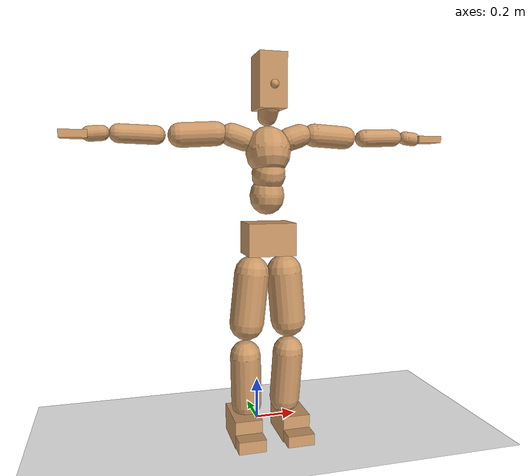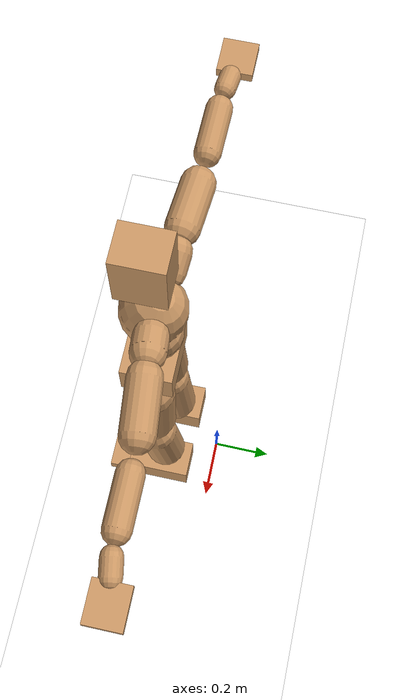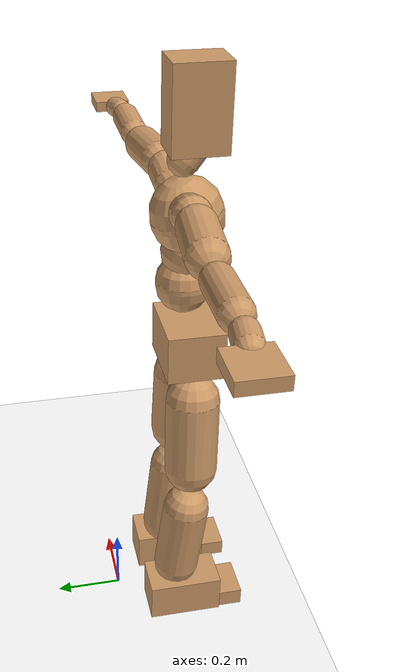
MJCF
<mujoco model="humanoid">
  <option integrator="implicitfast" />

  <visual>
    <global offwidth="1280" offheight="960" />
    <headlight active="1" ambient="0.34 0.34 0.34" diffuse="0.5 0.5 0.5" />
  </visual>

  <default>
    <joint damping="2" stiffness="2" armature="0.01" limited="true" solimplimit="0 .99 .01" />
    <geom condim="1" friction="0.7 0.005 0.0001" solimp=".99 .99 .003" solref="0.015 1" margin="0.001" rgba="0.8 0.6 .4 1" />
    <default class="smplcontact">
      <geom condim="3" friction="1. 0.005 0.0001" solref="0.015 1" solimp="0.98 0.98 0.001" priority="1" />
    </default>
    <default class="stiff_medium">
      <joint stiffness="10" />
    </default>
    <default class="stiff_medium_higher">
      <joint stiffness="50" />
    </default>
    <default class="stiff_high">
      <joint stiffness="100" />
    </default>
  </default>

  <asset>
    <texture type="skybox" builtin="gradient" rgb1="0.99 0.99 0.99" rgb2="0.608 0.828 0.892" width="100" />
    <texture builtin="flat" height="1278" mark="cross" markrgb="1 1 1" name="texgeom" random="0.01" rgb1="0.8 0.6 0.4" rgb2="0.8 0.6 0.4" type="cube" width="127" />
    <texture name="texplane" type="2d" builtin="checker" markrgb="1 1 1" rgb1="0.756 0.772 0.76" rgb2="0.6 0.6 0.6" width="100" height="100" />
    <material name="MatPlane" reflectance="0.5" texture="texplane" texrepeat="1 1" texuniform="true" />
    <material name="geom" texture="texgeom" texuniform="true" />
  </asset>

  <worldbody>
    <light name="tracking_light" pos="0 0 7" dir="0 0 -1" directional="true" cutoff="100" exponent="1" diffuse="1 1 1" specular="0.1 0.1 0.1" mode="trackcom" />
    <camera name="back" pos="0 3 2.4" xyaxes="-1 0 0 0 -1 2" mode="trackcom" />
    <camera name="side" pos="-3 0 2.4" xyaxes="0 -1 0 1 0 2" mode="trackcom" />
    <camera name="front_side" pos="-2.8 -2.8 0.8" xyaxes="0.5 -0.5 0 0.1 0.1 1" mode="trackcom" />
    <geom condim="3" name="floor" pos="0 0 0" rgba="1 1 1 1" size="100 100 .2" type="plane" material="MatPlane" />
    <body name="Pelvis" pos="-0.0018 -0.2233 0.95104" euler="90 0 0">
      <site name="Pelvis" size="0.01" />
      <freejoint name="Pelvis" />
      <geom type="box" pos="-0.0000 -0.0121 -0.0055" size="0.1069 0.0722 0.083" quat="1.0000 0.0000 0.0000 0.0000" density="3165.830099" name="Pelvis" />
      <body name="L_Hip" pos="0.0695 -0.0914 -0.0068">
        <joint name="L_Hip_x" type="hinge" pos="0 0 0" axis="1 0 0" stiffness="18.594829404761903" range="-160.0 22.92" class="stiff_medium" damping="28.432030713407563" armature="0.019321509051833156"/>
        <joint name="L_Hip_y" type="hinge" pos="0 0 0" axis="0 1 0" stiffness="18.68454559523809" range="-70.0 70.0" class="stiff_medium" damping="22.320043136834432" armature="0.02666290828914331"/>
        <joint name="L_Hip_z" type="hinge" pos="0 0 0" axis="0 0 1" stiffness="18.66355571428571" range="-28.65 90.0" class="stiff_medium" damping="18.984122846333754" armature="0.019310196072060984"/>
        <geom type="capsule" density="2040.816327" fromto="0.0069 -0.075 -0.0009 0.0274 -0.3002 -0.0036" size="0.07995" name="L_Hip" />
        <body name="L_Knee" pos="0.0343 -0.3752 -0.0045">
          <joint name="L_Knee_x" type="hinge" pos="0 0 0" axis="1 0 0" range="-5.16 171.89" damping="15.838169955951884" armature="0.020367160695757107" stiffness="3.8488370952380953"/>
          <joint name="L_Knee_y" type="hinge" pos="0 0 0" axis="0 1 0" range="-4.58 6.88" damping="18.362887919885537" armature="0.028062744397046372" stiffness="3.754930023809524"/>
          <joint name="L_Knee_z" type="hinge" pos="0 0 0" axis="0 0 1" range="-6.88 4.58" damping="15.830512548572345" armature="0.020308860626230222" stiffness="3.856154404761905"/>
          <geom type="capsule" density="1234.567901" fromto="-0.0027 -0.0796 -0.0087 -0.0109 -0.3184 -0.035" size="0.07033" name="L_Knee" />
          <body name="L_Ankle" pos="-0.0136 -0.398 -0.0437">
            <joint name="L_Ankle_x" type="hinge" pos="0 0 0" axis="1 0 0" range="-45.84 45.84" class="stiff_medium" damping="14.656150020171335" armature="0.027158591692430102" stiffness="21.97"/>
            <joint name="L_Ankle_y" type="hinge" pos="0 0 0" axis="0 1 0" range="-74.48 22.92" class="stiff_medium" damping="7.3779487531724754" armature="0.027529523999615283" stiffness="21.97"/>
            <joint name="L_Ankle_z" type="hinge" pos="0 0 0" axis="0 0 1" range="-4.58 4.58" class="stiff_medium" damping="15.39294532276105" armature="0.029957867509926583" stiffness="21.97"/>
            <geom type="box" pos="0.0233 -0.0239 0.0242" size="0.06279 0.06032 0.1105" quat="1.0000 0.0000 0.0000 0.0000" density="449.071558" name="L_Ankle" class="smplcontact" />
            <body name="L_Toe" pos="0.0264 -0.0558 0.1193">
              <joint name="L_Toe_x" type="hinge" pos="0 0 0" axis="1 0 0" range="-91.67 22.92" armature="0.03136591739429268" damping="5.250177921376038" stiffness="4.394"/>
              <joint name="L_Toe_y" type="hinge" pos="0 0 0" axis="0 1 0" range="-4.58 4.58" armature="0.03306853167309654" damping="5.390790817154497" stiffness="4.394"/>
              <joint name="L_Toe_z" type="hinge" pos="0 0 0" axis="0 0 1" range="-4.58 4.58" armature="0.03651112610204265" damping="5.664448571438802" stiffness="4.394"/>
              <geom type="box" pos="-0.003 0.0055 0.0248" size="0.06214 0.026 0.06448" quat="1.0000 0.0000 0.0000 0.0000" density="423.206892" name="L_Toe" class="smplcontact" />
            </body>
          </body>
        </body>
      </body>
      <body name="R_Hip" pos="-0.0677 -0.0905 -0.0043">
        <joint name="R_Hip_x" type="hinge" pos="0 0 0" axis="1 0 0" stiffness="18.594829404761903" range="-160.0 22.92" class="stiff_medium" damping="28.432030713407563" armature="0.019321509051833156"/>
        <joint name="R_Hip_y" type="hinge" pos="0 0 0" axis="0 1 0" stiffness="18.68454559523809" range="-70.0 70.0" class="stiff_medium" damping="22.320043136834432" armature="0.02666290828914331"/>
        <joint name="R_Hip_z" type="hinge" pos="0 0 0" axis="0 0 1" stiffness="18.66355571428571" range="-90.0 28.65" class="stiff_medium" damping="18.984122846333754" armature="0.019310196072060984"/>
        <geom type="capsule" density="2040.816327" fromto="-0.0077 -0.0765 -0.0018 -0.0306 -0.3061 -0.0071" size="0.07878" name="R_Hip" />
        <body name="R_Knee" pos="-0.0383 -0.3826 -0.0089">
          <joint name="R_Knee_x" type="hinge" pos="0 0 0" axis="1 0 0" range="-5.16 171.89" damping="15.838169955951884" armature="0.020367160695757107" stiffness="3.8488370952380953"/>
          <joint name="R_Knee_y" type="hinge" pos="0 0 0" axis="0 1 0" range="-6.88 4.58" damping="18.362887919885537" armature="0.028062744397046372" stiffness="3.754930023809524"/>
          <joint name="R_Knee_z" type="hinge" pos="0 0 0" axis="0 0 1" range="-4.58 6.88" damping="15.830512548572345" armature="0.020308860626230222" stiffness="3.856154404761905"/>
          <geom type="capsule" density="1234.567901" fromto="0.0032 -0.0797 -0.0085 0.0126 -0.3187 -0.0338" size="0.07033" name="R_Knee" />
          <body name="R_Ankle" pos="0.0158 -0.3984 -0.0423">
            <joint name="R_Ankle_x" type="hinge" pos="0 0 0" axis="1 0 0" range="-45.84 45.84" class="stiff_medium" damping="14.656150020171335" armature="0.027158591692430102" stiffness="21.97"/>
            <joint name="R_Ankle_y" type="hinge" pos="0 0 0" axis="0 1 0" range="-22.92 74.48" class="stiff_medium" damping="7.3779487531724754" armature="0.027529523999615283" stiffness="21.97"/>
            <joint name="R_Ankle_z" type="hinge" pos="0 0 0" axis="0 0 1" range="-4.58 4.58" class="stiff_medium" damping="15.39294532276105" armature="0.029957867509926583" stiffness="21.97"/>
            <geom type="box" pos="-0.0212 -0.0174 0.0256" size="0.06279 0.06214 0.11245" quat="1.0000 0.0000 0.0000 0.0000" density="434.700981" name="R_Ankle" class="smplcontact" />
            <body name="R_Toe" pos="-0.0254 -0.0481 0.1233">
              <joint name="R_Toe_x" type="hinge" pos="0 0 0" axis="1 0 0" range="-91.67 22.92" armature="0.03136591739429268" damping="5.250177921376038" stiffness="4.394"/>
              <joint name="R_Toe_y" type="hinge" pos="0 0 0" axis="0 1 0" range="-4.58 4.58" armature="0.03306853167309654" damping="5.390790817154497" stiffness="4.394"/>
              <joint name="R_Toe_z" type="hinge" pos="0 0 0" axis="0 0 1" range="-4.58 4.58" armature="0.03651112610204265" damping="5.664448571438802" stiffness="4.394"/>
              <geom type="box" pos="0.0042 0.0045 0.0227" size="0.06227 0.02808 0.06409" quat="1.0000 0.0000 0.0000 0.0000" density="407.384095" name="R_Toe" class="smplcontact" />
            </body>
          </body>
        </body>
      </body>
      <body name="Torso" pos="-0.0025 0.109 -0.0267">
        <joint name="Torso_x" type="hinge" pos="0 0 0" axis="1 0 0" range="-25.78 57.3" class="stiff_medium" damping="15.0" armature="0.010000000000000002" stiffness="10.0"/>
        <joint name="Torso_y" type="hinge" pos="0 0 0" axis="0 1 0" range="-57.3 57.3" class="stiff_high" damping="20.0" armature="0.010000000000000002" stiffness="100.0"/>
        <joint name="Torso_z" type="hinge" pos="0 0 0" axis="0 0 1" range="-34.38 34.38" class="stiff_high" damping="20.0" armature="0.01" stiffness="100.0"/>
        <geom type="capsule" density="2040.816327" fromto="0.0025 0.0608 0.0005 0.003 0.0743 0.0006" size="0.0769" name="Torso" />
        <body name="Spine" pos="0.0055 0.1352 0.0011">
          <joint name="Spine_x" type="hinge" pos="0 0 0" axis="1 0 0" stiffness="10.0" range="-25.78 57.3" class="stiff_medium" damping="15.000000000000004" armature="0.010000000000000007"/>
          <joint name="Spine_y" type="hinge" pos="0 0 0" axis="0 1 0" stiffness="10.0" range="-57.3 57.3" class="stiff_high" damping="8.0" armature="0.01"/>
          <joint name="Spine_z" type="hinge" pos="0 0 0" axis="0 0 1" stiffness="20.0" range="-34.38 34.38" class="stiff_high" damping="12.0" armature="0.010000000000000002"/>
          <geom type="capsule" density="2040.816327" fromto="0.0007 0.0238 0.0114 0.0008 0.0291 0.014" size="0.0755" name="Spine" />
          <body name="Chest" pos="0.0015 0.0529 0.0254">
            <joint name="Chest_x" type="hinge" pos="0 0 0" axis="1 0 0" stiffness="10.0" range="-25.78 57.3" class="stiff_medium" damping="15.000000000000007" armature="0.01000000000000001"/>
            <joint name="Chest_y" type="hinge" pos="0 0 0" axis="0 1 0" stiffness="10.0" range="-57.3 57.3" class="stiff_high" damping="8.0" armature="0.010000000000000002"/>
            <joint name="Chest_z" type="hinge" pos="0 0 0" axis="0 0 1" stiffness="20.0" range="-34.38 34.38" class="stiff_high" damping="12.000000000000004" armature="0.010000000000000005"/>
            <geom type="capsule" density="2040.816327" fromto="-0.0009 0.0682 -0.0173 -0.001 0.0833 -0.0212" size="0.1002" name="Chest" />
            <body name="Neck" pos="-0.0028 0.2139 -0.0429">
              <joint name="Neck_x" type="hinge" pos="0 0 0" axis="1 0 0" range="-28.65 57.3" class="stiff_medium_higher" damping="9.999999999999996" armature="0.009999999999999993" stiffness="50.0"/>
              <joint name="Neck_y" type="hinge" pos="0 0 0" axis="0 1 0" range="-40.11 40.11" class="stiff_medium_higher" damping="10.0" armature="0.01" stiffness="50.0"/>
              <joint name="Neck_z" type="hinge" pos="0 0 0" axis="0 0 1" range="-40.11 40.11" class="stiff_medium_higher" damping="9.999999999999975" armature="0.009999999999999952" stiffness="50.0"/>
              <geom type="capsule" density="1000" fromto="0.001 0.013 0.0103 0.0041 0.052 0.0411" size="0.0436" name="Neck" />
              <body name="Head" pos="0.0052 0.065 0.0513">
                <joint name="Head_x" type="hinge" pos="0 0 0" axis="1 0 0" range="-28.65 57.3" class="stiff_medium_higher" damping="2.000000000000003" armature="0.010000000000000031" stiffness="50.0"/>
                <joint name="Head_y" type="hinge" pos="0 0 0" axis="0 1 0" range="-40.11 40.11" class="stiff_medium_higher" damping="1.9999999999999998" armature="0.009999999999999998" stiffness="50.0"/>
                <joint name="Head_z" type="hinge" pos="0 0 0" axis="0 0 1" range="-40.11 40.11" class="stiff_medium_higher" damping="1.999999999999996" armature="0.009999999999999962" stiffness="50.0"/>
                <geom type="box" pos="-0.0042 0.0876 -0.0116" size="0.0606 0.1154 0.076" quat="1.0000 0.0000 0.0000 0.0000" density="1018.069894" name="Head" />
                <geom type="capsule" name="nose" size="0.02 0.01" pos="0 0.07 0.05" quat="1 0 0 0" mass="0" contype="0" conaffinity="0" />
              </body>
            </body>
            <body name="L_Thorax" pos="0.0788 0.1217 -0.0341">
              <joint name="L_Thorax_x" type="hinge" pos="0 0 0" axis="1 0 0" range="-10.89 4.58" class="stiff_medium_higher" damping="19.99999999999965" armature="0.009999999999999646" stiffness="50.0"/>
              <joint name="L_Thorax_y" type="hinge" pos="0 0 0" axis="0 1 0" range="-28.65 17.19" class="stiff_medium_higher" damping="20.0" armature="0.010000000000000002" stiffness="50.0"/>
              <joint name="L_Thorax_z" type="hinge" pos="0 0 0" axis="0 0 1" range="-31.51 40.11" class="stiff_medium_higher" damping="19.999999999999993" armature="0.009999999999999992" stiffness="50.0"/>
              <geom type="capsule" density="1000" fromto="0.0182 0.0061 -0.0018 0.0728 0.0244 -0.0071" size="0.0521" name="L_Thorax" />
              <body name="L_Shoulder" pos="0.091 0.0305 -0.0089">
                <joint name="L_Shoulder_x" type="hinge" pos="0 0 0" axis="1 0 0" range="-97.4 97.4" class="stiff_medium" damping="5.999999999999935" armature="0.009999999999999785" stiffness="10.0"/>
                <joint name="L_Shoulder_y" type="hinge" pos="0 0 0" axis="0 1 0" range="-108.86 80.21" class="stiff_medium" damping="6.0" armature="0.01" stiffness="10.0"/>
                <joint name="L_Shoulder_z" type="hinge" pos="0 0 0" axis="0 0 1" range="-97.4 85.94" class="stiff_medium" damping="5.999999999999998" armature="0.009999999999999995" stiffness="10.0"/>
                <geom type="capsule" density="1000" fromto="0.0519 -0.0026 -0.0055 0.2077 -0.0102 -0.022" size="0.0517" name="L_Shoulder" />
                <body name="L_Elbow" pos="0.2596 -0.0128 -0.0275">
                  <joint name="L_Elbow_x" type="hinge" pos="0 0 0" axis="1 0 0" range="-17.19 4.58" damping="4.999999999999831" armature="0.009999999999999325" stiffness="2.0"/>
                  <joint name="L_Elbow_y" type="hinge" pos="0 0 0" axis="0 1 0" range="-180.0 17.19" damping="5.000000000000007" armature="0.010000000000000026" stiffness="2.0"/>
                  <joint name="L_Elbow_z" type="hinge" pos="0 0 0" axis="0 0 1" range="-100.84 4.58" damping="4.999999999999999" armature="0.009999999999999995" stiffness="2.0"/>
                  <geom type="capsule" density="1000" fromto="0.0498 0.0018 -0.0002 0.1994 0.0072 -0.0009" size="0.0405" name="L_Elbow" />
                  <body name="L_Wrist" pos="0.2492 0.009 -0.0012">
                    <joint name="L_Wrist_x" type="hinge" pos="0 0 0" axis="1 0 0" range="-180.0 22.92" armature="0.009999999999999534" damping="1.9999999999999534" stiffness="2.0"/>
                    <joint name="L_Wrist_y" type="hinge" pos="0 0 0" axis="0 1 0" range="-17.19 17.19" armature="0.010000000000000018" damping="2.0000000000000018" stiffness="2.0"/>
                    <joint name="L_Wrist_z" type="hinge" pos="0 0 0" axis="0 0 1" range="-22.92 22.92" armature="0.00999999999999994" damping="1.9999999999999938" stiffness="2.0"/>
                    <geom type="capsule" density="1000" fromto="0.0168 -0.0016 -0.003 0.0672 -0.0065 -0.012" size="0.0318" name="L_Wrist" class="smplcontact" />
                    <body name="L_Hand" pos="0.084 -0.0082 -0.0149">
                      <joint name="L_Hand_x" type="hinge" pos="0 0 0" axis="1 0 0" range="-17.19 17.19" armature="0.009999999999999712" damping="1.9999999999999711" stiffness="2.0"/>
                      <joint name="L_Hand_y" type="hinge" pos="0 0 0" axis="0 1 0" range="-51.57 51.57" armature="0.009999999999999731" damping="1.9999999999999731" stiffness="2.0"/>
                      <joint name="L_Hand_z" type="hinge" pos="0 0 0" axis="0 0 1" range="-91.67 91.67" armature="0.00999999999999985" damping="1.999999999999985" stiffness="2.0"/>
                      <geom type="box" pos="0.0493 0.001 -0.0058" size="0.0585 0.0158 0.0538" quat="1.0000 0.0000 0.0000 0.0000" density="400.552564" name="L_Hand" class="smplcontact" />
                    </body>
                  </body>
                </body>
              </body>
            </body>
            <body name="R_Thorax" pos="-0.0818 0.1188 -0.0386">
              <joint name="R_Thorax_x" type="hinge" pos="0 0 0" axis="1 0 0" range="-10.89 4.58" class="stiff_medium_higher" damping="19.99999999999965" armature="0.009999999999999646" stiffness="50.0"/>
              <joint name="R_Thorax_y" type="hinge" pos="0 0 0" axis="0 1 0" range="-17.19 28.65" class="stiff_medium_higher" damping="20.0" armature="0.010000000000000002" stiffness="50.0"/>
              <joint name="R_Thorax_z" type="hinge" pos="0 0 0" axis="0 0 1" range="-40.11 31.51" class="stiff_medium_higher" damping="19.999999999999993" armature="0.009999999999999992" stiffness="50.0"/>
              <geom type="capsule" density="1000" fromto="-0.0192 0.0065 -0.0018 -0.0768 0.026 -0.0073" size="0.0511" name="R_Thorax" />
              <body name="R_Shoulder" pos="-0.096 0.0326 -0.0091">
                <joint name="R_Shoulder_x" type="hinge" pos="0 0 0" axis="1 0 0" range="-97.4 97.4" class="stiff_medium" damping="5.999999999999935" armature="0.009999999999999785" stiffness="10.0"/>
                <joint name="R_Shoulder_y" type="hinge" pos="0 0 0" axis="0 1 0" range="-80.21 108.86" class="stiff_medium" damping="6.0" armature="0.01" stiffness="10.0"/>
                <joint name="R_Shoulder_z" type="hinge" pos="0 0 0" axis="0 0 1" range="-85.94 97.4" class="stiff_medium" damping="5.999999999999998" armature="0.009999999999999995" stiffness="10.0"/>
                <geom type="capsule" density="1000" fromto="-0.0507 -0.0027 -0.0043 -0.203 -0.0107 -0.0171" size="0.0531" name="R_Shoulder" />
                <body name="R_Elbow" pos="-0.2537 -0.0133 -0.0214">
                  <joint name="R_Elbow_x" type="hinge" pos="0 0 0" axis="1 0 0" range="-17.19 4.58" damping="4.999999999999831" armature="0.009999999999999325" stiffness="2.0"/>
                  <joint name="R_Elbow_y" type="hinge" pos="0 0 0" axis="0 1 0" range="-17.19 180.0" damping="5.000000000000007" armature="0.010000000000000026" stiffness="2.0"/>
                  <joint name="R_Elbow_z" type="hinge" pos="0 0 0" axis="0 0 1" range="-4.58 100.84" damping="4.999999999999999" armature="0.009999999999999995" stiffness="2.0"/>
                  <geom type="capsule" density="1000" fromto="-0.0511 0.0016 -0.0011 -0.2042 0.0062 -0.0044" size="0.0408" name="R_Elbow" />
                  <body name="R_Wrist" pos="-0.2553 0.0078 -0.0056">
                    <joint name="R_Wrist_x" type="hinge" pos="0 0 0" axis="1 0 0" range="-180.0 22.92" armature="0.009999999999999534" damping="1.9999999999999534" stiffness="2.0"/>
                    <joint name="R_Wrist_y" type="hinge" pos="0 0 0" axis="0 1 0" range="-17.19 17.19" armature="0.010000000000000018" damping="2.0000000000000018" stiffness="2.0"/>
                    <joint name="R_Wrist_z" type="hinge" pos="0 0 0" axis="0 0 1" range="-22.92 22.92" armature="0.00999999999999994" damping="1.9999999999999938" stiffness="2.0"/>
                    <geom type="capsule" density="1000" fromto="-0.0169 -0.0012 -0.0021 -0.0677 -0.0049 -0.0083" size="0.0326" name="R_Wrist" class="smplcontact" />
                    <body name="R_Hand" pos="-0.0846 -0.0061 -0.0103">
                      <joint name="R_Hand_x" type="hinge" pos="0 0 0" axis="1 0 0" range="-17.19 17.19" armature="0.009999999999999712" damping="1.9999999999999711" stiffness="2.0"/>
                      <joint name="R_Hand_y" type="hinge" pos="0 0 0" axis="0 1 0" range="-51.57 51.57" armature="0.009999999999999731" damping="1.9999999999999731" stiffness="2.0"/>
                      <joint name="R_Hand_z" type="hinge" pos="0 0 0" axis="0 0 1" range="-91.67 91.67" armature="0.00999999999999985" damping="1.999999999999985" stiffness="2.0"/>
                      <geom type="box" pos="-0.0462 -0.0009 -0.0079" size="0.0569 0.0164 0.0546" quat="1.0000 0.0000 0.0000 0.0000" density="403.679611" name="R_Hand" class="smplcontact" />
                    </body>
                  </body>
                </body>
              </body>
            </body>
          </body>
        </body>
      </body>
    </body>
  </worldbody>
  <actuator>
    <general name="L_Hip_x" joint="L_Hip_x" biastype="affine" gainprm="534.2853524749014" biasprm="-400.39271876918593 -334.70692928571424 -3.790937428454342" ctrllimited="true" ctrlrange="-1 1" forcerange="-669.4138585714285 669.4138585714285" />
    <general name="L_Hip_y" joint="L_Hip_y" biastype="affine" gainprm="410.89461824364463" biasprm="0.0 -336.3218207142857 -4.464008627366886" ctrllimited="true" ctrlrange="-1 1" forcerange="-672.6436414285714 672.6436414285714" />
    <general name="L_Hip_z" joint="L_Hip_z" biastype="affine" gainprm="347.841990088457" biasprm="179.8576156083172 -335.9440028571428 -3.796824569266751" ctrllimited="true" ctrlrange="-1 1" forcerange="-671.8880057142856 671.8880057142856" />
    <general name="L_Knee_x" joint="L_Knee_x" biastype="affine" gainprm="535.1990601687174" biasprm="504.0030460430966 -346.39533857142857 -3.959542488987971" ctrllimited="true" ctrlrange="-1 1" forcerange="-692.7906771428571 692.7906771428571" />
    <general name="L_Knee_y" joint="L_Knee_y" biastype="affine" gainprm="33.79685955466284" biasprm="6.7829648320876545 -337.94370214285715 -4.590721979971384" ctrllimited="true" ctrlrange="-1 1" forcerange="-675.8874042857143 675.8874042857143" />
    <general name="L_Knee_z" joint="L_Knee_z" biastype="affine" gainprm="34.7079460901942" biasprm="-6.965818150737055 -347.0538964285714 -3.9576281371430864" ctrllimited="true" ctrlrange="-1 1" forcerange="-694.1077928571428 694.1077928571428" />
    <general name="L_Ankle_x" joint="L_Ankle_x" biastype="affine" gainprm="158.19565205375093" biasprm="0.0 -197.73000000000002 -4.885383340057111" ctrllimited="true" ctrlrange="-1 1" forcerange="-395.46000000000004 395.46000000000004" />
    <general name="L_Ankle_y" joint="L_Ankle_y" biastype="affine" gainprm="168.0656251094605" biasprm="-88.96779908258506 -197.73000000000002 -4.918632502114984" ctrllimited="true" ctrlrange="-1 1" forcerange="-395.46000000000004 395.46000000000004" />
    <general name="L_Ankle_z" joint="L_Ankle_z" biastype="affine" gainprm="15.805761047255215" biasprm="0.0 -197.73000000000002 -5.130981774253684" ctrllimited="true" ctrlrange="-1 1" forcerange="-395.46000000000004 395.46000000000004" />
    <general name="L_Toe_x" joint="L_Toe_x" biastype="affine" gainprm="158.18184789563102" biasprm="-94.90358707413066 -158.184 -2.100071168550415" ctrllimited="true" ctrlrange="-1 1" forcerange="-316.368 316.368" />
    <general name="L_Toe_y" joint="L_Toe_y" biastype="affine" gainprm="12.644608837804173" biasprm="0.0 -158.184 -2.156316326861799" ctrllimited="true" ctrlrange="-1 1" forcerange="-316.368 316.368" />
    <general name="L_Toe_z" joint="L_Toe_z" biastype="affine" gainprm="12.644608837804173" biasprm="0.0 -158.184 -2.265779428575521" ctrllimited="true" ctrlrange="-1 1" forcerange="-316.368 316.368" />
    <general name="R_Hip_x" joint="R_Hip_x" biastype="affine" gainprm="534.2853524749014" biasprm="-400.39271876918593 -334.70692928571424 -3.790937428454342" ctrllimited="true" ctrlrange="-1 1" forcerange="-669.4138585714285 669.4138585714285" />
    <general name="R_Hip_y" joint="R_Hip_y" biastype="affine" gainprm="410.89461824364463" biasprm="0.0 -336.3218207142857 -4.464008627366886" ctrllimited="true" ctrlrange="-1 1" forcerange="-672.6436414285714 672.6436414285714" />
    <general name="R_Hip_z" joint="R_Hip_z" biastype="affine" gainprm="347.841990088457" biasprm="-179.8576156083172 -335.9440028571428 -3.796824569266751" ctrllimited="true" ctrlrange="-1 1" forcerange="-671.8880057142856 671.8880057142856" />
    <general name="R_Knee_x" joint="R_Knee_x" biastype="affine" gainprm="535.1990601687174" biasprm="504.0030460430966 -346.39533857142857 -3.959542488987971" ctrllimited="true" ctrlrange="-1 1" forcerange="-692.7906771428571 692.7906771428571" />
    <general name="R_Knee_y" joint="R_Knee_y" biastype="affine" gainprm="33.79685955466284" biasprm="-6.7829648320876545 -337.94370214285715 -4.590721979971384" ctrllimited="true" ctrlrange="-1 1" forcerange="-675.8874042857143 675.8874042857143" />
    <general name="R_Knee_z" joint="R_Knee_z" biastype="affine" gainprm="34.7079460901942" biasprm="6.965818150737055 -347.0538964285714 -3.9576281371430864" ctrllimited="true" ctrlrange="-1 1" forcerange="-694.1077928571428 694.1077928571428" />
    <general name="R_Ankle_x" joint="R_Ankle_x" biastype="affine" gainprm="158.19565205375093" biasprm="0.0 -197.73000000000002 -4.885383340057111" ctrllimited="true" ctrlrange="-1 1" forcerange="-395.46000000000004 395.46000000000004" />
    <general name="R_Ankle_y" joint="R_Ankle_y" biastype="affine" gainprm="168.0656251094605" biasprm="88.96779908258506 -197.73000000000002 -4.918632502114984" ctrllimited="true" ctrlrange="-1 1" forcerange="-395.46000000000004 395.46000000000004" />
    <general name="R_Ankle_z" joint="R_Ankle_z" biastype="affine" gainprm="15.805761047255215" biasprm="0.0 -197.73000000000002 -5.130981774253684" ctrllimited="true" ctrlrange="-1 1" forcerange="-395.46000000000004 395.46000000000004" />
    <general name="R_Toe_x" joint="R_Toe_x" biastype="affine" gainprm="158.18184789563102" biasprm="-94.90358707413066 -158.184 -2.100071168550415" ctrllimited="true" ctrlrange="-1 1" forcerange="-316.368 316.368" />
    <general name="R_Toe_y" joint="R_Toe_y" biastype="affine" gainprm="12.644608837804173" biasprm="0.0 -158.184 -2.156316326861799" ctrllimited="true" ctrlrange="-1 1" forcerange="-316.368 316.368" />
    <general name="R_Toe_z" joint="R_Toe_z" biastype="affine" gainprm="12.644608837804173" biasprm="0.0 -158.184 -2.265779428575521" ctrllimited="true" ctrlrange="-1 1" forcerange="-316.368 316.368" />
    <general name="Torso_x" joint="Torso_x" biastype="affine" gainprm="174.00234510682668" biasprm="66.0153336274335 -240.0 -4.0" ctrllimited="true" ctrlrange="-1 1" forcerange="-360.0 360.0" />
    <general name="Torso_y" joint="Torso_y" biastype="affine" gainprm="240.0176787342602" biasprm="0.0 -240.0 -4.0" ctrllimited="true" ctrlrange="-1 1" forcerange="-360.0 360.0" />
    <general name="Torso_z" joint="Torso_z" biastype="affine" gainprm="144.01060724055614" biasprm="0.0 -240.0 -4.0" ctrllimited="true" ctrlrange="-1 1" forcerange="-360.0 360.0" />
    <general name="Spine_x" joint="Spine_x" biastype="affine" gainprm="174.00234510682668" biasprm="66.0153336274335 -240.0 -4.000000000000001" ctrllimited="true" ctrlrange="-1 1" forcerange="-360.0 360.0" />
    <general name="Spine_y" joint="Spine_y" biastype="affine" gainprm="240.0176787342602" biasprm="0.0 -240.0 -4.0" ctrllimited="true" ctrlrange="-1 1" forcerange="-360.0 360.0" />
    <general name="Spine_z" joint="Spine_z" biastype="affine" gainprm="144.01060724055614" biasprm="0.0 -240.0 -4.0" ctrllimited="true" ctrlrange="-1 1" forcerange="-360.0 360.0" />
    <general name="Chest_x" joint="Chest_x" biastype="affine" gainprm="174.00234510682668" biasprm="66.0153336274335 -240.0 -4.000000000000002" ctrllimited="true" ctrlrange="-1 1" forcerange="-360.0 360.0" />
    <general name="Chest_y" joint="Chest_y" biastype="affine" gainprm="240.0176787342602" biasprm="0.0 -240.0 -4.0" ctrllimited="true" ctrlrange="-1 1" forcerange="-360.0 360.0" />
    <general name="Chest_z" joint="Chest_z" biastype="affine" gainprm="144.01060724055614" biasprm="0.0 -240.0 -4.000000000000001" ctrllimited="true" ctrlrange="-1 1" forcerange="-360.0 360.0" />
    <general name="Neck_x" joint="Neck_x" biastype="affine" gainprm="27.00198885760427" biasprm="9.000662952534757 -36.0 -0.7999999999999997" ctrllimited="true" ctrlrange="-1 1" forcerange="-72.0 72.0" />
    <general name="Neck_y" joint="Neck_y" biastype="affine" gainprm="25.20185626709732" biasprm="0.0 -36.0 -0.8" ctrllimited="true" ctrlrange="-1 1" forcerange="-72.0 72.0" />
    <general name="Neck_z" joint="Neck_z" biastype="affine" gainprm="25.20185626709732" biasprm="0.0 -36.0 -0.799999999999998" ctrllimited="true" ctrlrange="-1 1" forcerange="-72.0 72.0" />
    <general name="Head_x" joint="Head_x" biastype="affine" gainprm="18.001325905069514" biasprm="6.000441968356505 -24.0 -0.8000000000000013" ctrllimited="true" ctrlrange="-1 1" forcerange="-48.0 48.0" />
    <general name="Head_y" joint="Head_y" biastype="affine" gainprm="16.801237511398213" biasprm="0.0 -24.0 -0.7999999999999999" ctrllimited="true" ctrlrange="-1 1" forcerange="-48.0 48.0" />
    <general name="Head_z" joint="Head_z" biastype="affine" gainprm="16.801237511398213" biasprm="0.0 -24.0 -0.7999999999999985" ctrllimited="true" ctrlrange="-1 1" forcerange="-48.0 48.0" />
    <general name="L_Thorax_x" joint="L_Thorax_x" biastype="affine" gainprm="16.200146117011364" biasprm="-6.6078165480505335 -120.0 -1.599999999999972" ctrllimited="true" ctrlrange="-1 1" forcerange="-240.0 240.0" />
    <general name="L_Thorax_y" joint="L_Thorax_y" biastype="affine" gainprm="48.00353574685204" biasprm="-12.00088393671301 -120.0 -1.6" ctrllimited="true" ctrlrange="-1 1" forcerange="-240.0 240.0" />
    <general name="L_Thorax_z" joint="L_Thorax_z" biastype="affine" gainprm="75.00028861670033" biasprm="9.00589894029074 -120.0 -1.5999999999999994" ctrllimited="true" ctrlrange="-1 1" forcerange="-240.0 240.0" />
    <general name="L_Shoulder_x" joint="L_Shoulder_x" biastype="affine" gainprm="81.5976331892389" biasprm="0.0 -48.0 -1.5999999999999828" ctrllimited="true" ctrlrange="-1 1" forcerange="-96.0 96.0" />
    <general name="L_Shoulder_y" joint="L_Shoulder_y" biastype="affine" gainprm="79.19745640189629" biasprm="-12.00088393671301 -48.0 -1.6" ctrllimited="true" ctrlrange="-1 1" forcerange="-96.0 96.0" />
    <general name="L_Shoulder_z" joint="L_Shoulder_z" biastype="affine" gainprm="76.79727961455369" biasprm="-4.800353574685214 -48.0 -1.5999999999999996" ctrllimited="true" ctrlrange="-1 1" forcerange="-96.0 96.0" />
    <general name="L_Elbow_x" joint="L_Elbow_x" biastype="affine" gainprm="13.67849441372996" biasprm="-7.923096672353461 -72.0 -0.7999999999999731" ctrllimited="true" ctrlrange="-1 1" forcerange="-144.0 144.0" />
    <general name="L_Elbow_y" joint="L_Elbow_y" biastype="affine" gainprm="123.89813107227425" biasprm="-102.29653998619085 -72.0 -0.8000000000000012" ctrllimited="true" ctrlrange="-1 1" forcerange="-144.0 144.0" />
    <general name="L_Elbow_z" joint="L_Elbow_z" biastype="affine" gainprm="66.23733950828719" biasprm="-60.4819417669107 -72.0 -0.7999999999999998" ctrllimited="true" ctrlrange="-1 1" forcerange="-144.0 144.0" />
    <general name="L_Wrist_x" joint="L_Wrist_x" biastype="affine" gainprm="21.24973270888136" biasprm="-16.449379134196157 -12.0 -0.7999999999999814" ctrllimited="true" ctrlrange="-1 1" forcerange="-24.0 24.0" />
    <general name="L_Wrist_y" joint="L_Wrist_y" biastype="affine" gainprm="3.6002651810139037" biasprm="0.0 -12.0 -0.8000000000000007" ctrllimited="true" ctrlrange="-1 1" forcerange="-24.0 24.0" />
    <general name="L_Wrist_z" joint="L_Wrist_z" biastype="affine" gainprm="4.800353574685205" biasprm="0.0 -12.0 -0.7999999999999976" ctrllimited="true" ctrlrange="-1 1" forcerange="-24.0 24.0" />
    <general name="L_Hand_x" joint="L_Hand_x" biastype="affine" gainprm="3.6002651810139037" biasprm="0.0 -12.0 -0.7999999999999885" ctrllimited="true" ctrlrange="-1 1" forcerange="-24.0 24.0" />
    <general name="L_Hand_y" joint="L_Hand_y" biastype="affine" gainprm="10.800795543041708" biasprm="0.0 -12.0 -0.7999999999999893" ctrllimited="true" ctrlrange="-1 1" forcerange="-24.0 24.0" />
    <general name="L_Hand_z" joint="L_Hand_z" biastype="affine" gainprm="19.199319903638422" biasprm="0.0 -12.0 -0.799999999999994" ctrllimited="true" ctrlrange="-1 1" forcerange="-24.0 24.0" />
    <general name="R_Thorax_x" joint="R_Thorax_x" biastype="affine" gainprm="16.200146117011364" biasprm="-6.6078165480505335 -120.0 -1.599999999999972" ctrllimited="true" ctrlrange="-1 1" forcerange="-240.0 240.0" />
    <general name="R_Thorax_y" joint="R_Thorax_y" biastype="affine" gainprm="48.00353574685204" biasprm="12.000883936713002 -120.0 -1.6" ctrllimited="true" ctrlrange="-1 1" forcerange="-240.0 240.0" />
    <general name="R_Thorax_z" joint="R_Thorax_z" biastype="affine" gainprm="75.00028861670033" biasprm="-9.00589894029074 -120.0 -1.5999999999999994" ctrllimited="true" ctrlrange="-1 1" forcerange="-240.0 240.0" />
    <general name="R_Shoulder_x" joint="R_Shoulder_x" biastype="affine" gainprm="81.5976331892389" biasprm="0.0 -48.0 -1.5999999999999828" ctrllimited="true" ctrlrange="-1 1" forcerange="-96.0 96.0" />
    <general name="R_Shoulder_y" joint="R_Shoulder_y" biastype="affine" gainprm="79.19745640189629" biasprm="12.00088393671301 -48.0 -1.6" ctrllimited="true" ctrlrange="-1 1" forcerange="-96.0 96.0" />
    <general name="R_Shoulder_z" joint="R_Shoulder_z" biastype="affine" gainprm="76.79727961455369" biasprm="4.800353574685204 -48.0 -1.5999999999999996" ctrllimited="true" ctrlrange="-1 1" forcerange="-96.0 96.0" />
    <general name="R_Elbow_x" joint="R_Elbow_x" biastype="affine" gainprm="13.67849441372996" biasprm="-7.923096672353461 -72.0 -0.7999999999999731" ctrllimited="true" ctrlrange="-1 1" forcerange="-144.0 144.0" />
    <general name="R_Elbow_y" joint="R_Elbow_y" biastype="affine" gainprm="123.89813107227425" biasprm="102.29653998619085 -72.0 -0.8000000000000012" ctrllimited="true" ctrlrange="-1 1" forcerange="-144.0 144.0" />
    <general name="R_Elbow_z" joint="R_Elbow_z" biastype="affine" gainprm="66.23733950828719" biasprm="60.481941766910694 -72.0 -0.7999999999999998" ctrllimited="true" ctrlrange="-1 1" forcerange="-144.0 144.0" />
    <general name="R_Wrist_x" joint="R_Wrist_x" biastype="affine" gainprm="21.24973270888136" biasprm="-16.449379134196157 -12.0 -0.7999999999999814" ctrllimited="true" ctrlrange="-1 1" forcerange="-24.0 24.0" />
    <general name="R_Wrist_y" joint="R_Wrist_y" biastype="affine" gainprm="3.6002651810139037" biasprm="0.0 -12.0 -0.8000000000000007" ctrllimited="true" ctrlrange="-1 1" forcerange="-24.0 24.0" />
    <general name="R_Wrist_z" joint="R_Wrist_z" biastype="affine" gainprm="4.800353574685205" biasprm="0.0 -12.0 -0.7999999999999976" ctrllimited="true" ctrlrange="-1 1" forcerange="-24.0 24.0" />
    <general name="R_Hand_x" joint="R_Hand_x" biastype="affine" gainprm="3.6002651810139037" biasprm="0.0 -12.0 -0.7999999999999885" ctrllimited="true" ctrlrange="-1 1" forcerange="-24.0 24.0" />
    <general name="R_Hand_y" joint="R_Hand_y" biastype="affine" gainprm="10.800795543041708" biasprm="0.0 -12.0 -0.7999999999999893" ctrllimited="true" ctrlrange="-1 1" forcerange="-24.0 24.0" />
    <general name="R_Hand_z" joint="R_Hand_z" biastype="affine" gainprm="19.199319903638422" biasprm="0.0 -12.0 -0.799999999999994" ctrllimited="true" ctrlrange="-1 1" forcerange="-24.0 24.0" />
  </actuator>
  <contact>
    <exclude body1="Torso" body2="Chest" />
    <exclude body1="Head" body2="Chest" />
    <exclude body1="R_Knee" body2="R_Toe" />
    <exclude body1="R_Knee" body2="L_Ankle" />
    <exclude body1="R_Knee" body2="L_Toe" />
    <exclude body1="L_Knee" body2="L_Toe" />
    <exclude body1="L_Knee" body2="R_Ankle" />
    <exclude body1="L_Knee" body2="R_Toe" />
    <exclude body1="L_Shoulder" body2="Chest" />
    <exclude body1="R_Shoulder" body2="Chest" />
  </contact>
  <sensor>
    <framelinvel name="sensor_Pelvis_framelinvel" objtype="xbody" objname="Pelvis" />
    <framelinvel name="sensor_L_Hip_framelinvel" objtype="xbody" objname="L_Hip" />
    <framelinvel name="sensor_L_Knee_framelinvel" objtype="xbody" objname="L_Knee" />
    <framelinvel name="sensor_L_Ankle_framelinvel" objtype="xbody" objname="L_Ankle" />
    <framelinvel name="sensor_L_Toe_framelinvel" objtype="xbody" objname="L_Toe" />
    <framelinvel name="sensor_R_Hip_framelinvel" objtype="xbody" objname="R_Hip" />
    <framelinvel name="sensor_R_Knee_framelinvel" objtype="xbody" objname="R_Knee" />
    <framelinvel name="sensor_R_Ankle_framelinvel" objtype="xbody" objname="R_Ankle" />
    <framelinvel name="sensor_R_Toe_framelinvel" objtype="xbody" objname="R_Toe" />
    <framelinvel name="sensor_Torso_framelinvel" objtype="xbody" objname="Torso" />
    <framelinvel name="sensor_Spine_framelinvel" objtype="xbody" objname="Spine" />
    <framelinvel name="sensor_Chest_framelinvel" objtype="xbody" objname="Chest" />
    <framelinvel name="sensor_Neck_framelinvel" objtype="xbody" objname="Neck" />
    <framelinvel name="sensor_Head_framelinvel" objtype="xbody" objname="Head" />
    <framelinvel name="sensor_L_Thorax_framelinvel" objtype="xbody" objname="L_Thorax" />
    <framelinvel name="sensor_L_Shoulder_framelinvel" objtype="xbody" objname="L_Shoulder" />
    <framelinvel name="sensor_L_Elbow_framelinvel" objtype="xbody" objname="L_Elbow" />
    <framelinvel name="sensor_L_Wrist_framelinvel" objtype="xbody" objname="L_Wrist" />
    <framelinvel name="sensor_L_Hand_framelinvel" objtype="xbody" objname="L_Hand" />
    <framelinvel name="sensor_R_Thorax_framelinvel" objtype="xbody" objname="R_Thorax" />
    <framelinvel name="sensor_R_Shoulder_framelinvel" objtype="xbody" objname="R_Shoulder" />
    <framelinvel name="sensor_R_Elbow_framelinvel" objtype="xbody" objname="R_Elbow" />
    <framelinvel name="sensor_R_Wrist_framelinvel" objtype="xbody" objname="R_Wrist" />
    <framelinvel name="sensor_R_Hand_framelinvel" objtype="xbody" objname="R_Hand" />
    <frameangvel name="sensor_Pelvis_frameangvel" objtype="xbody" objname="Pelvis" />
    <frameangvel name="sensor_L_Hip_frameangvel" objtype="xbody" objname="L_Hip" />
    <frameangvel name="sensor_L_Knee_frameangvel" objtype="xbody" objname="L_Knee" />
    <frameangvel name="sensor_L_Ankle_frameangvel" objtype="xbody" objname="L_Ankle" />
    <frameangvel name="sensor_L_Toe_frameangvel" objtype="xbody" objname="L_Toe" />
    <frameangvel name="sensor_R_Hip_frameangvel" objtype="xbody" objname="R_Hip" />
    <frameangvel name="sensor_R_Knee_frameangvel" objtype="xbody" objname="R_Knee" />
    <frameangvel name="sensor_R_Ankle_frameangvel" objtype="xbody" objname="R_Ankle" />
    <frameangvel name="sensor_R_Toe_frameangvel" objtype="xbody" objname="R_Toe" />
    <frameangvel name="sensor_Torso_frameangvel" objtype="xbody" objname="Torso" />
    <frameangvel name="sensor_Spine_frameangvel" objtype="xbody" objname="Spine" />
    <frameangvel name="sensor_Chest_frameangvel" objtype="xbody" objname="Chest" />
    <frameangvel name="sensor_Neck_frameangvel" objtype="xbody" objname="Neck" />
    <frameangvel name="sensor_Head_frameangvel" objtype="xbody" objname="Head" />
    <frameangvel name="sensor_L_Thorax_frameangvel" objtype="xbody" objname="L_Thorax" />
    <frameangvel name="sensor_L_Shoulder_frameangvel" objtype="xbody" objname="L_Shoulder" />
    <frameangvel name="sensor_L_Elbow_frameangvel" objtype="xbody" objname="L_Elbow" />
    <frameangvel name="sensor_L_Wrist_frameangvel" objtype="xbody" objname="L_Wrist" />
    <frameangvel name="sensor_L_Hand_frameangvel" objtype="xbody" objname="L_Hand" />
    <frameangvel name="sensor_R_Thorax_frameangvel" objtype="xbody" objname="R_Thorax" />
    <frameangvel name="sensor_R_Shoulder_frameangvel" objtype="xbody" objname="R_Shoulder" />
    <frameangvel name="sensor_R_Elbow_frameangvel" objtype="xbody" objname="R_Elbow" />
    <frameangvel name="sensor_R_Wrist_frameangvel" objtype="xbody" objname="R_Wrist" />
    <frameangvel name="sensor_R_Hand_frameangvel" objtype="xbody" objname="R_Hand" />
    <subtreelinvel name="Chest_subtreelinvel" body="Chest" />
    <gyro name="Pelvis_gyro" site="Pelvis" />
  </sensor>
</mujoco>
